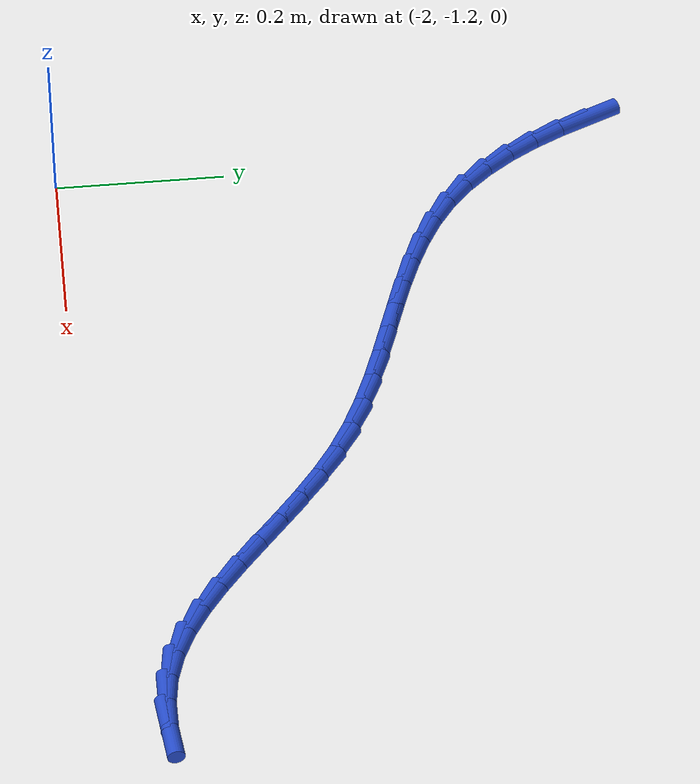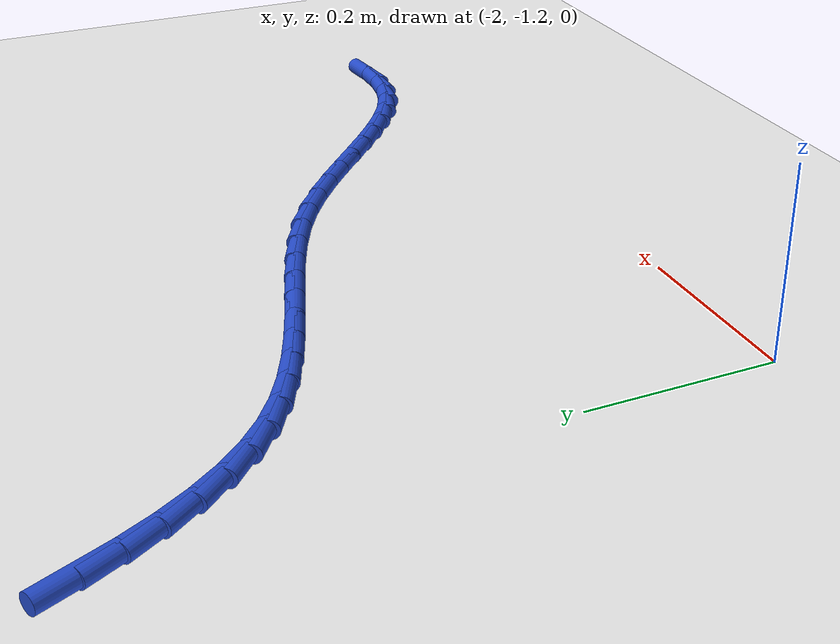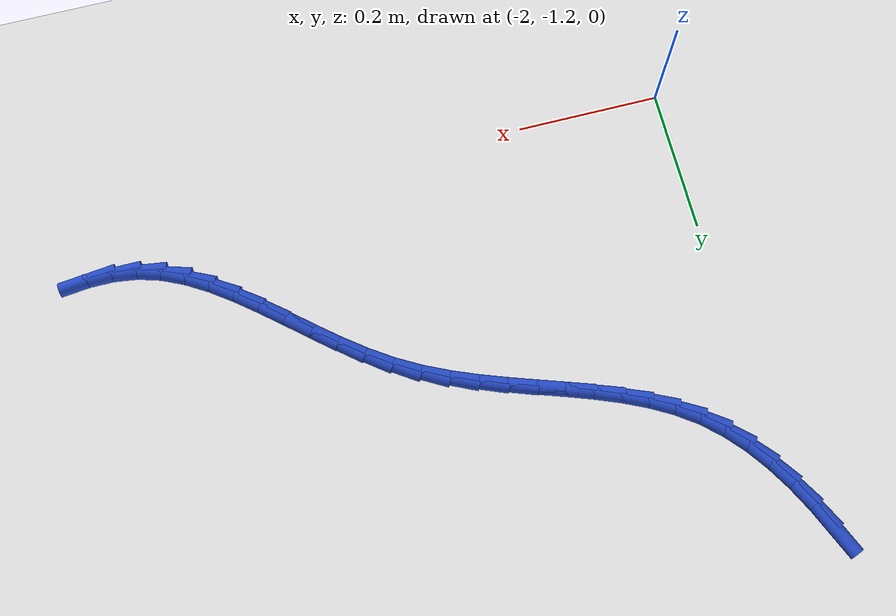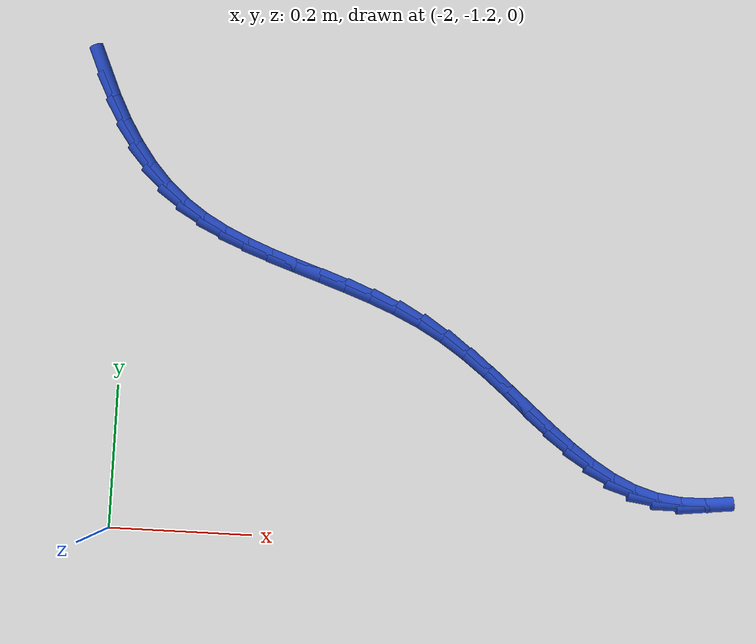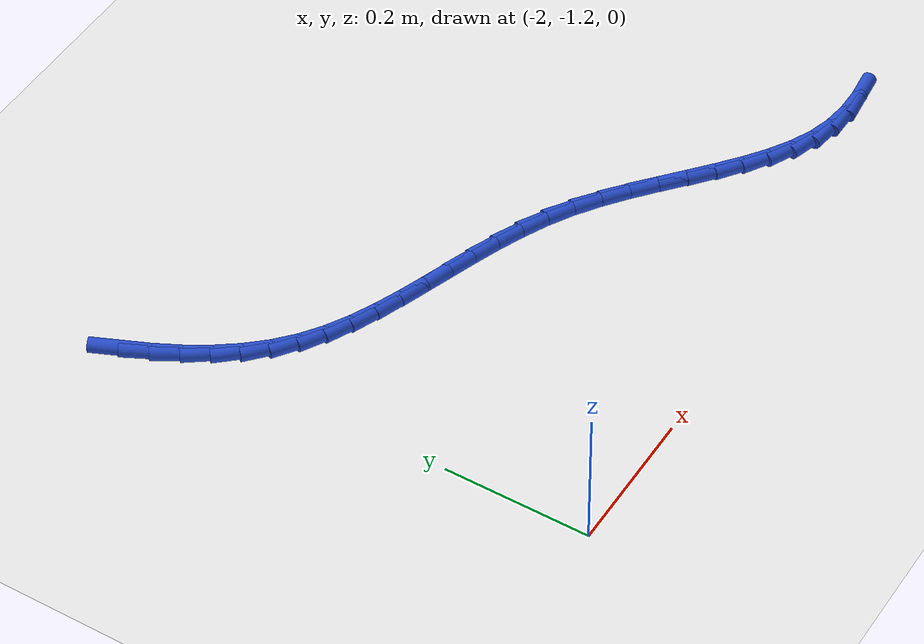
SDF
<sdf version="1.6">
 <world name="default">
  <model name="ground_plane">
   <static>1</static>
   <link name="link">
    <collision name="collision">
     <geometry><plane><normal>0 0 1</normal><size>100 100</size></plane></geometry>
     <surface><friction><ode><mu>100</mu><mu2>50</mu2></ode></friction></surface>
    </collision>
    <visual name="visual">
     <cast_shadows>0</cast_shadows>
     <geometry><plane><normal>0 0 1</normal><size>100 100</size></plane></geometry>
     <material>
      <script><uri>file://media/materials/scripts/gazebo.material</uri><name>Gazebo/WhiteGlow</name></script>
     </material>
    </visual>
   </link>
  </model>
  <model name="line">
   <link name="link_104">
    <pose>-2.0469133145000376 -0.5563470671259743 0.01 0 1.57 -1.1625216063253774</pose>
    <collision name="collision">
     <geometry><cylinder><radius>0.01</radius><length>0.08</length></cylinder></geometry>
    </collision>
    <visual name="visual">
     <material>
      <script><name>Gazebo/Blue</name><uri>file://media/materials/scripts/gazebo.material</uri></script>
     </material>
     <geometry><cylinder><radius>0.01</radius><length>0.08</length></cylinder></geometry>
    </visual>
   </link>
   <link name="link_105">
    <pose>-2.031447418657165 -0.5920996227758303 0.01 0 1.57 -1.1016596933335263</pose>
    <collision name="collision">
     <geometry><cylinder><radius>0.01</radius><length>0.08</length></cylinder></geometry>
    </collision>
    <visual name="visual">
     <material>
      <script><name>Gazebo/Blue</name><uri>file://media/materials/scripts/gazebo.material</uri></script>
     </material>
     <geometry><cylinder><radius>0.01</radius><length>0.08</length></cylinder></geometry>
    </visual>
   </link>
   <link name="link_106">
    <pose>-2.0141428860722983 -0.6262389154003656 0.01 0 1.57 -1.0297854768867343</pose>
    <collision name="collision">
     <geometry><cylinder><radius>0.01</radius><length>0.08</length></cylinder></geometry>
    </collision>
    <visual name="visual">
     <material>
      <script><name>Gazebo/Blue</name><uri>file://media/materials/scripts/gazebo.material</uri></script>
     </material>
     <geometry><cylinder><radius>0.01</radius><length>0.08</length></cylinder></geometry>
    </visual>
   </link>
   <link name="link_107">
    <pose>-1.994834007502368 -0.6583772863568527 0.01 0 1.57 -0.9454665173834779</pose>
    <collision name="collision">
     <geometry><cylinder><radius>0.01</radius><length>0.08</length></cylinder></geometry>
    </collision>
    <visual name="visual">
     <material>
      <script><name>Gazebo/Blue</name><uri>file://media/materials/scripts/gazebo.material</uri></script>
     </material>
     <geometry><cylinder><radius>0.01</radius><length>0.08</length></cylinder></geometry>
    </visual>
   </link>
   <link name="link_108">
    <pose>-1.973355073704304 -0.6881270770025646 0.01 0 1.57 -0.8475146885225102</pose>
    <collision name="collision">
     <geometry><cylinder><radius>0.01</radius><length>0.08</length></cylinder></geometry>
    </collision>
    <visual name="visual">
     <material>
      <script><name>Gazebo/Blue</name><uri>file://media/materials/scripts/gazebo.material</uri></script>
     </material>
     <geometry><cylinder><radius>0.01</radius><length>0.08</length></cylinder></geometry>
    </visual>
   </link>
   <link name="link_109">
    <pose>-1.949540375435035 -0.7151006286947741 0.01 0 1.57 -0.7354414310655951</pose>
    <collision name="collision">
     <geometry><cylinder><radius>0.01</radius><length>0.08</length></cylinder></geometry>
    </collision>
    <visual name="visual">
     <material>
      <script><name>Gazebo/Blue</name><uri>file://media/materials/scripts/gazebo.material</uri></script>
     </material>
     <geometry><cylinder><radius>0.01</radius><length>0.08</length></cylinder></geometry>
    </visual>
   </link>
   <link name="link_110">
    <pose>-1.9232243118471828 -0.7389104801193933 0.01 0 1.57 -0.6171982580079922</pose>
    <collision name="collision">
     <geometry><cylinder><radius>0.01</radius><length>0.08</length></cylinder></geometry>
    </collision>
    <visual name="visual">
     <material>
      <script><name>Gazebo/Blue</name><uri>file://media/materials/scripts/gazebo.material</uri></script>
     </material>
     <geometry><cylinder><radius>0.01</radius><length>0.08</length></cylinder></geometry>
    </visual>
   </link>
   <link name="link_111">
    <pose>-1.8943638886574117 -0.759392368747133 0.01 0 1.57 -0.5161261617168368</pose>
    <collision name="collision">
     <geometry><cylinder><radius>0.01</radius><length>0.08</length></cylinder></geometry>
    </collision>
    <visual name="visual">
     <material>
      <script><name>Gazebo/Blue</name><uri>file://media/materials/scripts/gazebo.material</uri></script>
     </material>
     <geometry><cylinder><radius>0.01</radius><length>0.08</length></cylinder></geometry>
    </visual>
   </link>
   <link name="link_112">
    <pose>-1.863274057208591 -0.7770336531867372 0.01 0 1.57 -0.43749022232100665</pose>
    <collision name="collision">
     <geometry><cylinder><radius>0.01</radius><length>0.08</length></cylinder></geometry>
    </collision>
    <visual name="visual">
     <material>
      <script><name>Gazebo/Blue</name><uri>file://media/materials/scripts/gazebo.material</uri></script>
     </material>
     <geometry><cylinder><radius>0.01</radius><length>0.08</length></cylinder></geometry>
    </visual>
   </link>
   <link name="link_113">
    <pose>-1.8303347398793106 -0.7924399683915572 0.01 0 1.57 -0.38084276740176654</pose>
    <collision name="collision">
     <geometry><cylinder><radius>0.01</radius><length>0.08</length></cylinder></geometry>
    </collision>
    <visual name="visual">
     <material>
      <script><name>Gazebo/Blue</name><uri>file://media/materials/scripts/gazebo.material</uri></script>
     </material>
     <geometry><cylinder><radius>0.01</radius><length>0.08</length></cylinder></geometry>
    </visual>
   </link>
   <link name="link_114">
    <pose>-1.795925859048161 -0.8062169493149443 0.01 0 1.57 -0.3449023878067327</pose>
    <collision name="collision">
     <geometry><cylinder><radius>0.01</radius><length>0.08</length></cylinder></geometry>
    </collision>
    <visual name="visual">
     <material>
      <script><name>Gazebo/Blue</name><uri>file://media/materials/scripts/gazebo.material</uri></script>
     </material>
     <geometry><cylinder><radius>0.01</radius><length>0.08</length></cylinder></geometry>
    </visual>
   </link>
   <link name="link_115">
    <pose>-1.7604273370937307 -0.8189702309102496 0.01 0 1.57 -0.3283428147416732</pose>
    <collision name="collision">
     <geometry><cylinder><radius>0.01</radius><length>0.08</length></cylinder></geometry>
    </collision>
    <visual name="visual">
     <material>
      <script><name>Gazebo/Blue</name><uri>file://media/materials/scripts/gazebo.material</uri></script>
     </material>
     <geometry><cylinder><radius>0.01</radius><length>0.08</length></cylinder></geometry>
    </visual>
   </link>
   <link name="link_116">
    <pose>-1.7242190963946116 -0.831305448130824 0.01 0 1.57 -0.3301861860643068</pose>
    <collision name="collision">
     <geometry><cylinder><radius>0.01</radius><length>0.08</length></cylinder></geometry>
    </collision>
    <visual name="visual">
     <material>
      <script><name>Gazebo/Blue</name><uri>file://media/materials/scripts/gazebo.material</uri></script>
     </material>
     <geometry><cylinder><radius>0.01</radius><length>0.08</length></cylinder></geometry>
    </visual>
   </link>
   <link name="link_117">
    <pose>-1.6876810593293927 -0.8438282359300193 0.01 0 1.57 -0.34992420740281555</pose>
    <collision name="collision">
     <geometry><cylinder><radius>0.01</radius><length>0.08</length></cylinder></geometry>
    </collision>
    <visual name="visual">
     <material>
      <script><name>Gazebo/Blue</name><uri>file://media/materials/scripts/gazebo.material</uri></script>
     </material>
     <geometry><cylinder><radius>0.01</radius><length>0.08</length></cylinder></geometry>
    </visual>
   </link>
   <link name="link_118">
    <pose>-1.6511931482766646 -0.8571442292611867 0.01 0 1.57 -0.3874605414051107</pose>
    <collision name="collision">
     <geometry><cylinder><radius>0.01</radius><length>0.08</length></cylinder></geometry>
    </collision>
    <visual name="visual">
     <material>
      <script><name>Gazebo/Blue</name><uri>file://media/materials/scripts/gazebo.material</uri></script>
     </material>
     <geometry><cylinder><radius>0.01</radius><length>0.08</length></cylinder></geometry>
    </visual>
   </link>
   <link name="link_119">
    <pose>-1.6151352856150172 -0.871859063077677 0.01 0 1.57 -0.44290562681197465</pose>
    <collision name="collision">
     <geometry><cylinder><radius>0.01</radius><length>0.08</length></cylinder></geometry>
    </collision>
    <visual name="visual">
     <material>
      <script><name>Gazebo/Blue</name><uri>file://media/materials/scripts/gazebo.material</uri></script>
     </material>
     <geometry><cylinder><radius>0.01</radius><length>0.08</length></cylinder></geometry>
    </visual>
   </link>
   <link name="link_120">
    <pose>-1.5798873937230395 -0.8885783723328422 0.01 0 1.57 -0.5161784467259191</pose>
    <collision name="collision">
     <geometry><cylinder><radius>0.01</radius><length>0.08</length></cylinder></geometry>
    </collision>
    <visual name="visual">
     <material>
      <script><name>Gazebo/Blue</name><uri>file://media/materials/scripts/gazebo.material</uri></script>
     </material>
     <geometry><cylinder><radius>0.01</radius><length>0.08</length></cylinder></geometry>
    </visual>
   </link>
   <link name="link_121">
    <pose>-1.5458288380119025 -0.9079065523840082 0.01 0 1.57 -0.595915830191129</pose>
    <collision name="collision">
     <geometry><cylinder><radius>0.01</radius><length>0.08</length></cylinder></geometry>
    </collision>
    <visual name="visual">
     <material>
      <script><name>Gazebo/Blue</name><uri>file://media/materials/scripts/gazebo.material</uri></script>
     </material>
     <geometry><cylinder><radius>0.01</radius><length>0.08</length></cylinder></geometry>
    </visual>
   </link>
   <link name="link_122">
    <pose>-1.5131639702894424 -0.9300584853796366 0.01 0 1.57 -0.6562157992864703</pose>
    <collision name="collision">
     <geometry><cylinder><radius>0.01</radius><length>0.08</length></cylinder></geometry>
    </collision>
    <visual name="visual">
     <material>
      <script><name>Gazebo/Blue</name><uri>file://media/materials/scripts/gazebo.material</uri></script>
     </material>
     <geometry><cylinder><radius>0.01</radius><length>0.08</length></cylinder></geometry>
    </visual>
   </link>
   <link name="link_123">
    <pose>-1.4816741074332649 -0.9543075398372752 0.01 0 1.57 -0.694415704078697</pose>
    <collision name="collision">
     <geometry><cylinder><radius>0.01</radius><length>0.08</length></cylinder></geometry>
    </collision>
    <visual name="visual">
     <material>
      <script><name>Gazebo/Blue</name><uri>file://media/materials/scripts/gazebo.material</uri></script>
     </material>
     <geometry><cylinder><radius>0.01</radius><length>0.08</length></cylinder></geometry>
    </visual>
   </link>
   <link name="link_124">
    <pose>-1.451077915533275 -0.9797876476313144 0.01 0 1.57 -0.7114006203629941</pose>
    <collision name="collision">
     <geometry><cylinder><radius>0.01</radius><length>0.08</length></cylinder></geometry>
    </collision>
    <visual name="visual">
     <material>
      <script><name>Gazebo/Blue</name><uri>file://media/materials/scripts/gazebo.material</uri></script>
     </material>
     <geometry><cylinder><radius>0.01</radius><length>0.08</length></cylinder></geometry>
    </visual>
   </link>
   <link name="link_125">
    <pose>-1.4210940606793778 -1.005632740636145 0.01 0 1.57 -0.7072108350292903</pose>
    <collision name="collision">
     <geometry><cylinder><radius>0.01</radius><length>0.08</length></cylinder></geometry>
    </collision>
    <visual name="visual">
     <material>
      <script><name>Gazebo/Blue</name><uri>file://media/materials/scripts/gazebo.material</uri></script>
     </material>
     <geometry><cylinder><radius>0.01</radius><length>0.08</length></cylinder></geometry>
    </visual>
   </link>
   <link name="link_126">
    <pose>-1.3914412089614767 -1.0309767507261565 0.01 0 1.57 -0.6807737694843681</pose>
    <collision name="collision">
     <geometry><cylinder><radius>0.01</radius><length>0.08</length></cylinder></geometry>
    </collision>
    <visual name="visual">
     <material>
      <script><name>Gazebo/Blue</name><uri>file://media/materials/scripts/gazebo.material</uri></script>
     </material>
     <geometry><cylinder><radius>0.01</radius><length>0.08</length></cylinder></geometry>
    </visual>
   </link>
   <link name="link_127">
    <pose>-1.361838026469478 -1.0549536097757395 0.01 0 1.57 -0.6297945512256505</pose>
    <collision name="collision">
     <geometry><cylinder><radius>0.01</radius><length>0.08</length></cylinder></geometry>
    </collision>
    <visual name="visual">
     <material>
      <script><name>Gazebo/Blue</name><uri>file://media/materials/scripts/gazebo.material</uri></script>
     </material>
     <geometry><cylinder><radius>0.01</radius><length>0.08</length></cylinder></geometry>
    </visual>
   </link>
   <link name="link_128">
    <pose>-1.3320031792932852 -1.0766972496592833 0.01 0 1.57 -0.5509078798714564</pose>
    <collision name="collision">
     <geometry><cylinder><radius>0.01</radius><length>0.08</length></cylinder></geometry>
    </collision>
    <visual name="visual">
     <material>
      <script><name>Gazebo/Blue</name><uri>file://media/materials/scripts/gazebo.material</uri></script>
     </material>
     <geometry><cylinder><radius>0.01</radius><length>0.08</length></cylinder></geometry>
    </visual>
   </link>
   <link name="link_129">
    <pose>-1.301655333522803 -1.0953416022511786 0.01 0 1.57 -0.440469507664835</pose>
    <collision name="collision">
     <geometry><cylinder><radius>0.01</radius><length>0.08</length></cylinder></geometry>
    </collision>
    <visual name="visual">
     <material>
      <script><name>Gazebo/Blue</name><uri>file://media/materials/scripts/gazebo.material</uri></script>
     </material>
     <geometry><cylinder><radius>0.01</radius><length>0.08</length></cylinder></geometry>
    </visual>
   </link>
   <link name="link_130">
    <pose>-1.270513155247936 -1.110020599425816 0.01 0 1.57 -0.29676687805932744</pose>
    <collision name="collision">
     <geometry><cylinder><radius>0.01</radius><length>0.08</length></cylinder></geometry>
    </collision>
    <visual name="visual">
     <material>
      <script><name>Gazebo/Blue</name><uri>file://media/materials/scripts/gazebo.material</uri></script>
     </material>
     <geometry><cylinder><radius>0.01</radius><length>0.08</length></cylinder></geometry>
    </visual>
   </link>
   <link name="link_131">
    <pose>-1.2382964685840725 -1.119872374604211 0.01 0 1.57 -0.13819940472669892</pose>
    <collision name="collision">
     <geometry><cylinder><radius>0.01</radius><length>0.08</length></cylinder></geometry>
    </collision>
    <visual name="visual">
     <material>
      <script><name>Gazebo/Blue</name><uri>file://media/materials/scripts/gazebo.material</uri></script>
     </material>
     <geometry><cylinder><radius>0.01</radius><length>0.08</length></cylinder></geometry>
    </visual>
   </link>
   <link name="link_132">
    <pose>-1.2048595768045507 -1.1245229783214867 0.01 0 1.57 -0.00035534821071796143</pose>
    <collision name="collision">
     <geometry><cylinder><radius>0.01</radius><length>0.08</length></cylinder></geometry>
    </collision>
    <visual name="visual">
     <material>
      <script><name>Gazebo/Blue</name><uri>file://media/materials/scripts/gazebo.material</uri></script>
     </material>
     <geometry><cylinder><radius>0.01</radius><length>0.08</length></cylinder></geometry>
    </visual>
   </link>
   <link name="link_133">
    <pose>-1.1703149808812254 -1.1245352536823547 0.01 0 1.57 0.11097589490850734</pose>
    <collision name="collision">
     <geometry><cylinder><radius>0.01</radius><length>0.08</length></cylinder></geometry>
    </collision>
    <visual name="visual">
     <material>
      <script><name>Gazebo/Blue</name><uri>file://media/materials/scripts/gazebo.material</uri></script>
     </material>
     <geometry><cylinder><radius>0.01</radius><length>0.08</length></cylinder></geometry>
    </visual>
   </link>
  </model>
 </world>
</sdf>
